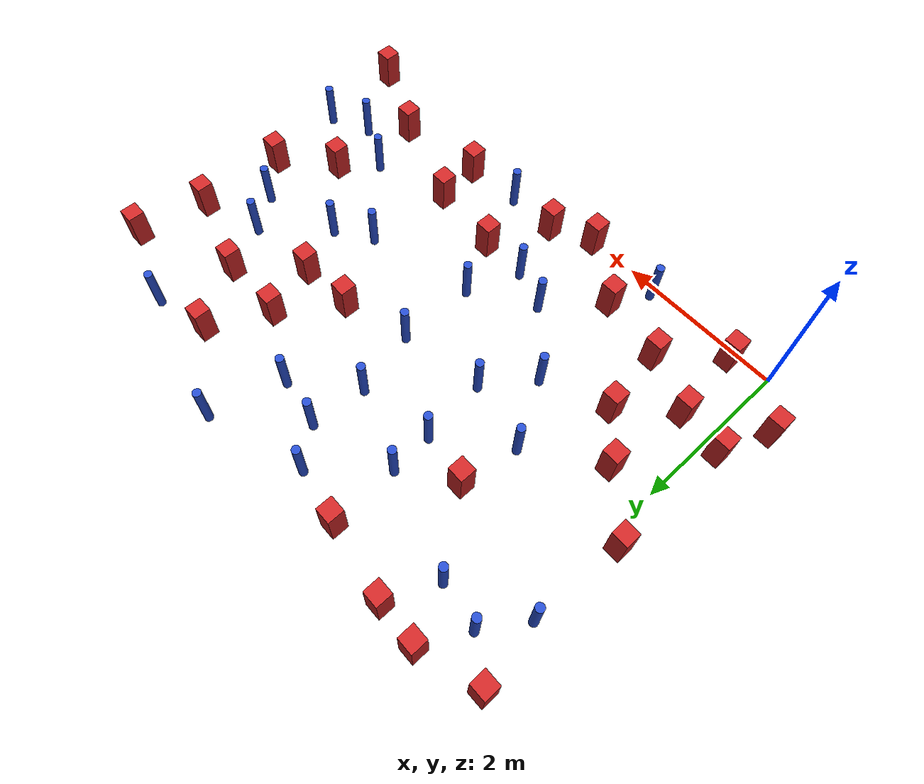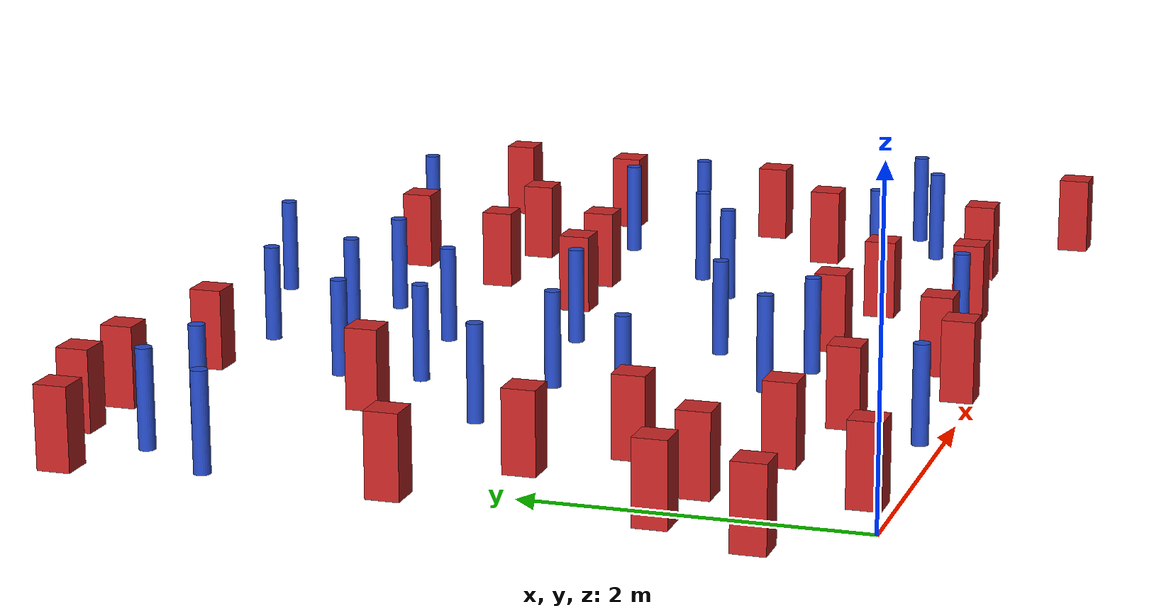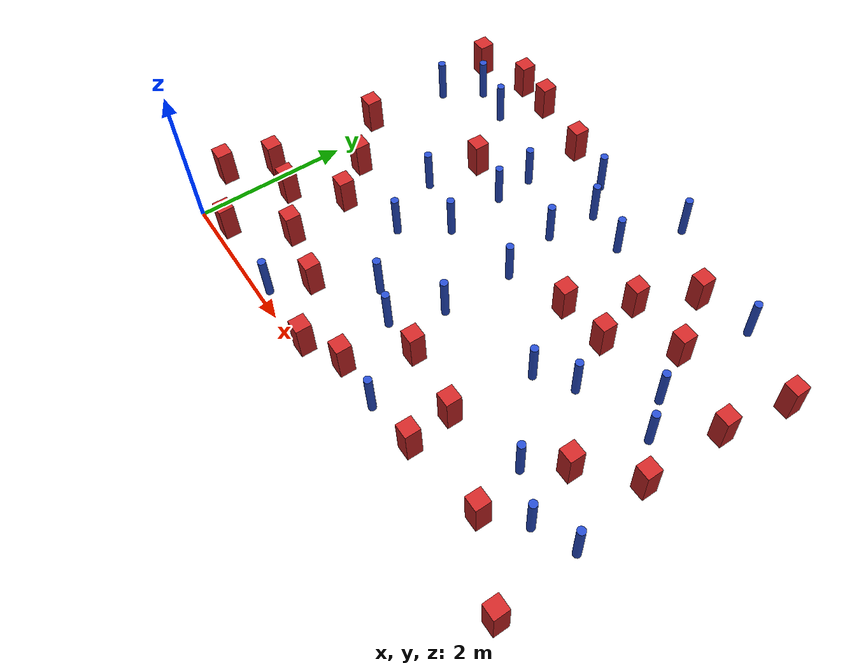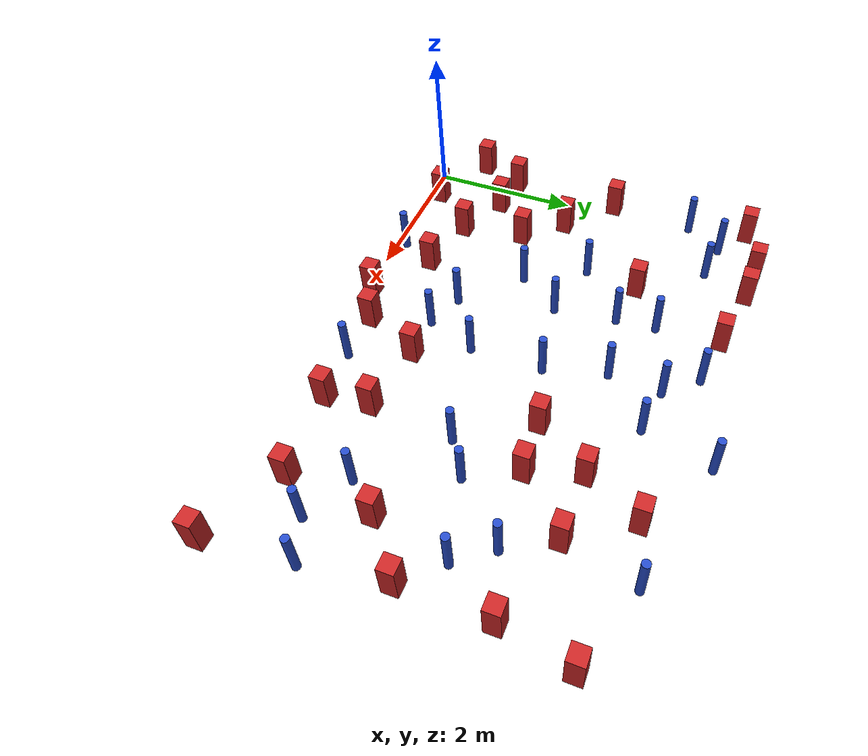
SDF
<sdf version="1.6">
 <model name="dense_71">
  <model name="pole_obstacle4">
   <static>true</static>
   <pose>2.38419710728 1.24697682987 -2.66029137441e-07 -5.69430205626e-07 6.84129966567e-07 -8.68349370747e-08</pose>
   <link name="link">
    <pose>0 0 0.3 0 -0 0</pose>
    <inertial>
     <mass>1</mass>
     <inertia><ixx>0.145833</ixx><ixy>0</ixy><ixz>0</ixz><iyy>0.145833</iyy><iyz>0</iyz><izz>0.125</izz></inertia>
    </inertial>
    <collision name="collision">
     <geometry><cylinder><radius>0.05</radius><length>.6</length></cylinder></geometry>
    </collision>
    <visual name="visual">
     <geometry><cylinder><radius>0.05</radius><length>.6</length></cylinder></geometry>
     <material>
      <script><name>Gazebo/Blue</name><uri>file://media/materials/scripts/gazebo.material</uri></script>
     </material>
    </visual>
   </link>
  </model>
  <model name="pole_obstacle6">
   <static>true</static>
   <pose>4.85572318534 2.34125898473 -2.66029137441e-07 -5.69430205643e-07 6.84129966548e-07 -8.68349370881e-08</pose>
   <link name="link">
    <pose>0 0 0.3 0 -0 0</pose>
    <inertial>
     <mass>1</mass>
     <inertia><ixx>0.145833</ixx><ixy>0</ixy><ixz>0</ixz><iyy>0.145833</iyy><iyz>0</iyz><izz>0.125</izz></inertia>
    </inertial>
    <collision name="collision">
     <geometry><cylinder><radius>0.05</radius><length>.6</length></cylinder></geometry>
    </collision>
    <visual name="visual">
     <geometry><cylinder><radius>0.05</radius><length>.6</length></cylinder></geometry>
     <material>
      <script><name>Gazebo/Blue</name><uri>file://media/materials/scripts/gazebo.material</uri></script>
     </material>
    </visual>
   </link>
  </model>
  <model name="pole_obstacle7">
   <static>true</static>
   <pose>1.96230142851 3.81808928893 -2.66029137441e-07 -5.69430205637e-07 6.84129966555e-07 -8.6834937083e-08</pose>
   <link name="link">
    <pose>0 0 0.3 0 -0 0</pose>
    <inertial>
     <mass>1</mass>
     <inertia><ixx>0.145833</ixx><ixy>0</ixy><ixz>0</ixz><iyy>0.145833</iyy><iyz>0</iyz><izz>0.125</izz></inertia>
    </inertial>
    <collision name="collision">
     <geometry><cylinder><radius>0.05</radius><length>.6</length></cylinder></geometry>
    </collision>
    <visual name="visual">
     <geometry><cylinder><radius>0.05</radius><length>.6</length></cylinder></geometry>
     <material>
      <script><name>Gazebo/Blue</name><uri>file://media/materials/scripts/gazebo.material</uri></script>
     </material>
    </visual>
   </link>
  </model>
  <model name="square_post_obstacle15">
   <static>true</static>
   <pose>2.57964126058 0.0965938394475 -7.80171244635e-07 7.17449752808e-06 -5.6639232126e-07 2.2715510512e-05</pose>
   <link name="link">
    <pose>0 0 0.25 0 -0 0</pose>
    <inertial>
     <mass>100</mass>
     <inertia>
      <ixx>0.166667</ixx>
      <ixy>0</ixy>
      <ixz>0</ixz>
      <iyy>0.166667</iyy>
      <iyz>0</iyz>
      <izz>0.166667</izz>
     </inertia>
    </inertial>
    <collision name="collision"><geometry><box><size>.2 .2 .5</size></box></geometry></collision>
    <visual name="visual">
     <geometry><box><size>.2 .2 .5</size></box></geometry>
     <material>
      <script><name>Gazebo/Red</name><uri>file://media/materials/scripts/gazebo.material</uri></script>
     </material>
    </visual>
   </link>
  </model>
  <model name="pole_obstacle21">
   <static>true</static>
   <pose>5.40762393656 4.50465931764 -2.66029137441e-07 -5.69430205655e-07 6.84129966534e-07 -8.68349370984e-08</pose>
   <link name="link">
    <pose>0 0 0.3 0 -0 0</pose>
    <inertial>
     <mass>1</mass>
     <inertia><ixx>0.145833</ixx><ixy>0</ixy><ixz>0</ixz><iyy>0.145833</iyy><iyz>0</iyz><izz>0.125</izz></inertia>
    </inertial>
    <collision name="collision">
     <geometry><cylinder><radius>0.05</radius><length>.6</length></cylinder></geometry>
    </collision>
    <visual name="visual">
     <geometry><cylinder><radius>0.05</radius><length>.6</length></cylinder></geometry>
     <material>
      <script><name>Gazebo/Blue</name><uri>file://media/materials/scripts/gazebo.material</uri></script>
     </material>
    </visual>
   </link>
  </model>
  <model name="pole_obstacle30">
   <static>true</static>
   <pose>1.69637625777 1.9237775565 -2.66029137441e-07 -5.69430205631e-07 6.84129966561e-07 -8.68349370801e-08</pose>
   <link name="link">
    <pose>0 0 0.3 0 -0 0</pose>
    <inertial>
     <mass>1</mass>
     <inertia><ixx>0.145833</ixx><ixy>0</ixy><ixz>0</ixz><iyy>0.145833</iyy><iyz>0</iyz><izz>0.125</izz></inertia>
    </inertial>
    <collision name="collision">
     <geometry><cylinder><radius>0.05</radius><length>.6</length></cylinder></geometry>
    </collision>
    <visual name="visual">
     <geometry><cylinder><radius>0.05</radius><length>.6</length></cylinder></geometry>
     <material>
      <script><name>Gazebo/Blue</name><uri>file://media/materials/scripts/gazebo.material</uri></script>
     </material>
    </visual>
   </link>
  </model>
  <model name="square_post_obstacle22">
   <static>true</static>
   <pose>4.36004274654 3.6157950318 -7.80171244635e-07 7.17449752808e-06 -5.6639232126e-07 2.2715510512e-05</pose>
   <link name="link">
    <pose>0 0 0.25 0 -0 0</pose>
    <inertial>
     <mass>100</mass>
     <inertia>
      <ixx>0.166667</ixx>
      <ixy>0</ixy>
      <ixz>0</ixz>
      <iyy>0.166667</iyy>
      <iyz>0</iyz>
      <izz>0.166667</izz>
     </inertia>
    </inertial>
    <collision name="collision"><geometry><box><size>.2 .2 .5</size></box></geometry></collision>
    <visual name="visual">
     <geometry><box><size>.2 .2 .5</size></box></geometry>
     <material>
      <script><name>Gazebo/Red</name><uri>file://media/materials/scripts/gazebo.material</uri></script>
     </material>
    </visual>
   </link>
  </model>
  <model name="square_post_obstacle28">
   <static>true</static>
   <pose>1.92408122065 4.64367417338 -7.80171244635e-07 7.17449752808e-06 -5.6639232126e-07 2.2715510512e-05</pose>
   <link name="link">
    <pose>0 0 0.25 0 -0 0</pose>
    <inertial>
     <mass>100</mass>
     <inertia>
      <ixx>0.166667</ixx>
      <ixy>0</ixy>
      <ixz>0</ixz>
      <iyy>0.166667</iyy>
      <iyz>0</iyz>
      <izz>0.166667</izz>
     </inertia>
    </inertial>
    <collision name="collision"><geometry><box><size>.2 .2 .5</size></box></geometry></collision>
    <visual name="visual">
     <geometry><box><size>.2 .2 .5</size></box></geometry>
     <material>
      <script><name>Gazebo/Red</name><uri>file://media/materials/scripts/gazebo.material</uri></script>
     </material>
    </visual>
   </link>
  </model>
  <model name="pole_obstacle34">
   <static>true</static>
   <pose>3.10384391882 2.67245468472 -2.66029137441e-07 -5.69430205643e-07 6.84129966548e-07 -8.68349370903e-08</pose>
   <link name="link">
    <pose>0 0 0.3 0 -0 0</pose>
    <inertial>
     <mass>1</mass>
     <inertia><ixx>0.145833</ixx><ixy>0</ixy><ixz>0</ixz><iyy>0.145833</iyy><iyz>0</iyz><izz>0.125</izz></inertia>
    </inertial>
    <collision name="collision">
     <geometry><cylinder><radius>0.05</radius><length>.6</length></cylinder></geometry>
    </collision>
    <visual name="visual">
     <geometry><cylinder><radius>0.05</radius><length>.6</length></cylinder></geometry>
     <material>
      <script><name>Gazebo/Blue</name><uri>file://media/materials/scripts/gazebo.material</uri></script>
     </material>
    </visual>
   </link>
  </model>
  <model name="pole_obstacle43">
   <static>true</static>
   <pose>-0.0823583343224 3.80414017 -2.66029137441e-07 -5.6943020563e-07 6.84129966563e-07 -8.68349370787e-08</pose>
   <link name="link">
    <pose>0 0 0.3 0 -0 0</pose>
    <inertial>
     <mass>1</mass>
     <inertia><ixx>0.145833</ixx><ixy>0</ixy><ixz>0</ixz><iyy>0.145833</iyy><iyz>0</iyz><izz>0.125</izz></inertia>
    </inertial>
    <collision name="collision">
     <geometry><cylinder><radius>0.05</radius><length>.6</length></cylinder></geometry>
    </collision>
    <visual name="visual">
     <geometry><cylinder><radius>0.05</radius><length>.6</length></cylinder></geometry>
     <material>
      <script><name>Gazebo/Blue</name><uri>file://media/materials/scripts/gazebo.material</uri></script>
     </material>
    </visual>
   </link>
  </model>
  <model name="pole_obstacle49">
   <static>true</static>
   <pose>5.29447376615 1.23253659601 -2.66029137441e-07 -5.69430205627e-07 6.84129966567e-07 -8.68349370776e-08</pose>
   <link name="link">
    <pose>0 0 0.3 0 -0 0</pose>
    <inertial>
     <mass>1</mass>
     <inertia><ixx>0.145833</ixx><ixy>0</ixy><ixz>0</ixz><iyy>0.145833</iyy><iyz>0</iyz><izz>0.125</izz></inertia>
    </inertial>
    <collision name="collision">
     <geometry><cylinder><radius>0.05</radius><length>.6</length></cylinder></geometry>
    </collision>
    <visual name="visual">
     <geometry><cylinder><radius>0.05</radius><length>.6</length></cylinder></geometry>
     <material>
      <script><name>Gazebo/Blue</name><uri>file://media/materials/scripts/gazebo.material</uri></script>
     </material>
    </visual>
   </link>
  </model>
  <model name="pole_obstacle53">
   <static>true</static>
   <pose>3.54613413945 4.03960462503 -2.66029137441e-07 -5.69430205635e-07 6.84129966557e-07 -8.68349370832e-08</pose>
   <link name="link">
    <pose>0 0 0.3 0 -0 0</pose>
    <inertial>
     <mass>1</mass>
     <inertia><ixx>0.145833</ixx><ixy>0</ixy><ixz>0</ixz><iyy>0.145833</iyy><iyz>0</iyz><izz>0.125</izz></inertia>
    </inertial>
    <collision name="collision">
     <geometry><cylinder><radius>0.05</radius><length>.6</length></cylinder></geometry>
    </collision>
    <visual name="visual">
     <geometry><cylinder><radius>0.05</radius><length>.6</length></cylinder></geometry>
     <material>
      <script><name>Gazebo/Blue</name><uri>file://media/materials/scripts/gazebo.material</uri></script>
     </material>
    </visual>
   </link>
  </model>
  <model name="square_post_obstacle40">
   <static>true</static>
   <pose>5.19089357855 3.6046396595 -7.80171244635e-07 7.17449752808e-06 -5.6639232126e-07 2.2715510512e-05</pose>
   <link name="link">
    <pose>0 0 0.25 0 -0 0</pose>
    <inertial>
     <mass>100</mass>
     <inertia>
      <ixx>0.166667</ixx>
      <ixy>0</ixy>
      <ixz>0</ixz>
      <iyy>0.166667</iyy>
      <iyz>0</iyz>
      <izz>0.166667</izz>
     </inertia>
    </inertial>
    <collision name="collision"><geometry><box><size>.2 .2 .5</size></box></geometry></collision>
    <visual name="visual">
     <geometry><box><size>.2 .2 .5</size></box></geometry>
     <material>
      <script><name>Gazebo/Red</name><uri>file://media/materials/scripts/gazebo.material</uri></script>
     </material>
    </visual>
   </link>
  </model>
  <model name="square_post_obstacle43">
   <static>true</static>
   <pose>3.426418821 1.08181021489 -7.80171244635e-07 7.17449752808e-06 -5.6639232126e-07 2.2715510512e-05</pose>
   <link name="link">
    <pose>0 0 0.25 0 -0 0</pose>
    <inertial>
     <mass>100</mass>
     <inertia>
      <ixx>0.166667</ixx>
      <ixy>0</ixy>
      <ixz>0</ixz>
      <iyy>0.166667</iyy>
      <iyz>0</iyz>
      <izz>0.166667</izz>
     </inertia>
    </inertial>
    <collision name="collision"><geometry><box><size>.2 .2 .5</size></box></geometry></collision>
    <visual name="visual">
     <geometry><box><size>.2 .2 .5</size></box></geometry>
     <material>
      <script><name>Gazebo/Red</name><uri>file://media/materials/scripts/gazebo.material</uri></script>
     </material>
    </visual>
   </link>
  </model>
  <model name="pole_obstacle57">
   <static>true</static>
   <pose>1.27595280279 2.68957354085 -2.66029137441e-07 -5.69430205634e-07 6.84129966558e-07 -8.68349370806e-08</pose>
   <link name="link">
    <pose>0 0 0.3 0 -0 0</pose>
    <inertial>
     <mass>1</mass>
     <inertia><ixx>0.145833</ixx><ixy>0</ixy><ixz>0</ixz><iyy>0.145833</iyy><iyz>0</iyz><izz>0.125</izz></inertia>
    </inertial>
    <collision name="collision">
     <geometry><cylinder><radius>0.05</radius><length>.6</length></cylinder></geometry>
    </collision>
    <visual name="visual">
     <geometry><cylinder><radius>0.05</radius><length>.6</length></cylinder></geometry>
     <material>
      <script><name>Gazebo/Blue</name><uri>file://media/materials/scripts/gazebo.material</uri></script>
     </material>
    </visual>
   </link>
  </model>
  <model name="square_post_obstacle45">
   <static>true</static>
   <pose>1.01305739748 4.79835674874 -7.80171244635e-07 7.17449752808e-06 -5.6639232126e-07 2.2715510512e-05</pose>
   <link name="link">
    <pose>0 0 0.25 0 -0 0</pose>
    <inertial>
     <mass>100</mass>
     <inertia>
      <ixx>0.166667</ixx>
      <ixy>0</ixy>
      <ixz>0</ixz>
      <iyy>0.166667</iyy>
      <iyz>0</iyz>
      <izz>0.166667</izz>
     </inertia>
    </inertial>
    <collision name="collision"><geometry><box><size>.2 .2 .5</size></box></geometry></collision>
    <visual name="visual">
     <geometry><box><size>.2 .2 .5</size></box></geometry>
     <material>
      <script><name>Gazebo/Red</name><uri>file://media/materials/scripts/gazebo.material</uri></script>
     </material>
    </visual>
   </link>
  </model>
  <model name="square_post_obstacle46">
   <static>true</static>
   <pose>5.49356925223 0.547908798125 -7.80171244635e-07 7.17449752808e-06 -5.6639232126e-07 2.2715510512e-05</pose>
   <link name="link">
    <pose>0 0 0.25 0 -0 0</pose>
    <inertial>
     <mass>100</mass>
     <inertia>
      <ixx>0.166667</ixx>
      <ixy>0</ixy>
      <ixz>0</ixz>
      <iyy>0.166667</iyy>
      <iyz>0</iyz>
      <izz>0.166667</izz>
     </inertia>
    </inertial>
    <collision name="collision"><geometry><box><size>.2 .2 .5</size></box></geometry></collision>
    <visual name="visual">
     <geometry><box><size>.2 .2 .5</size></box></geometry>
     <material>
      <script><name>Gazebo/Red</name><uri>file://media/materials/scripts/gazebo.material</uri></script>
     </material>
    </visual>
   </link>
  </model>
  <model name="square_post_obstacle49">
   <static>true</static>
   <pose>0.37520636482 1.08599796568 -7.80171244635e-07 7.17449752808e-06 -5.6639232126e-07 2.2715510512e-05</pose>
   <link name="link">
    <pose>0 0 0.25 0 -0 0</pose>
    <inertial>
     <mass>100</mass>
     <inertia>
      <ixx>0.166667</ixx>
      <ixy>0</ixy>
      <ixz>0</ixz>
      <iyy>0.166667</iyy>
      <iyz>0</iyz>
      <izz>0.166667</izz>
     </inertia>
    </inertial>
    <collision name="collision"><geometry><box><size>.2 .2 .5</size></box></geometry></collision>
    <visual name="visual">
     <geometry><box><size>.2 .2 .5</size></box></geometry>
     <material>
      <script><name>Gazebo/Red</name><uri>file://media/materials/scripts/gazebo.material</uri></script>
     </material>
    </visual>
   </link>
  </model>
  <model name="pole_obstacle68">
   <static>true</static>
   <pose>5.81796552223 2.61014844014 -2.66029137441e-07 -5.69430205643e-07 6.84129966548e-07 -8.68349370881e-08</pose>
   <link name="link">
    <pose>0 0 0.3 0 -0 0</pose>
    <inertial>
     <mass>1</mass>
     <inertia><ixx>0.145833</ixx><ixy>0</ixy><ixz>0</ixz><iyy>0.145833</iyy><iyz>0</iyz><izz>0.125</izz></inertia>
    </inertial>
    <collision name="collision">
     <geometry><cylinder><radius>0.05</radius><length>.6</length></cylinder></geometry>
    </collision>
    <visual name="visual">
     <geometry><cylinder><radius>0.05</radius><length>.6</length></cylinder></geometry>
     <material>
      <script><name>Gazebo/Blue</name><uri>file://media/materials/scripts/gazebo.material</uri></script>
     </material>
    </visual>
   </link>
  </model>
  <model name="square_post_obstacle53">
   <static>true</static>
   <pose>-0.142103559039 2.67700988703 -7.80171244635e-07 7.17449752808e-06 -5.6639232126e-07 2.2715510512e-05</pose>
   <link name="link">
    <pose>0 0 0.25 0 -0 0</pose>
    <inertial>
     <mass>100</mass>
     <inertia>
      <ixx>0.166667</ixx>
      <ixy>0</ixy>
      <ixz>0</ixz>
      <iyy>0.166667</iyy>
      <iyz>0</iyz>
      <izz>0.166667</izz>
     </inertia>
    </inertial>
    <collision name="collision"><geometry><box><size>.2 .2 .5</size></box></geometry></collision>
    <visual name="visual">
     <geometry><box><size>.2 .2 .5</size></box></geometry>
     <material>
      <script><name>Gazebo/Red</name><uri>file://media/materials/scripts/gazebo.material</uri></script>
     </material>
    </visual>
   </link>
  </model>
  <model name="pole_obstacle83">
   <static>true</static>
   <pose>2.59869494379 4.5320456758 -2.66029137441e-07 -5.69430205635e-07 6.84129966557e-07 -8.68349370832e-08</pose>
   <link name="link">
    <pose>0 0 0.3 0 -0 0</pose>
    <inertial>
     <mass>1</mass>
     <inertia><ixx>0.145833</ixx><ixy>0</ixy><ixz>0</ixz><iyy>0.145833</iyy><iyz>0</iyz><izz>0.125</izz></inertia>
    </inertial>
    <collision name="collision">
     <geometry><cylinder><radius>0.05</radius><length>.6</length></cylinder></geometry>
    </collision>
    <visual name="visual">
     <geometry><cylinder><radius>0.05</radius><length>.6</length></cylinder></geometry>
     <material>
      <script><name>Gazebo/Blue</name><uri>file://media/materials/scripts/gazebo.material</uri></script>
     </material>
    </visual>
   </link>
  </model>
  <model name="pole_obstacle84">
   <static>true</static>
   <pose>6.37673134827 1.16288997143 -2.66029137441e-07 -5.69430205627e-07 6.84129966567e-07 -8.68349370776e-08</pose>
   <link name="link">
    <pose>0 0 0.3 0 -0 0</pose>
    <inertial>
     <mass>1</mass>
     <inertia><ixx>0.145833</ixx><ixy>0</ixy><ixz>0</ixz><iyy>0.145833</iyy><iyz>0</iyz><izz>0.125</izz></inertia>
    </inertial>
    <collision name="collision">
     <geometry><cylinder><radius>0.05</radius><length>.6</length></cylinder></geometry>
    </collision>
    <visual name="visual">
     <geometry><cylinder><radius>0.05</radius><length>.6</length></cylinder></geometry>
     <material>
      <script><name>Gazebo/Blue</name><uri>file://media/materials/scripts/gazebo.material</uri></script>
     </material>
    </visual>
   </link>
  </model>
  <model name="pole_obstacle88">
   <static>true</static>
   <pose>5.88395862595 0.94307463825 -2.66029137441e-07 -5.69430205635e-07 6.84129966557e-07 -8.68349370823e-08</pose>
   <link name="link">
    <pose>0 0 0.3 0 -0 0</pose>
    <inertial>
     <mass>1</mass>
     <inertia><ixx>0.145833</ixx><ixy>0</ixy><ixz>0</ixz><iyy>0.145833</iyy><iyz>0</iyz><izz>0.125</izz></inertia>
    </inertial>
    <collision name="collision">
     <geometry><cylinder><radius>0.05</radius><length>.6</length></cylinder></geometry>
    </collision>
    <visual name="visual">
     <geometry><cylinder><radius>0.05</radius><length>.6</length></cylinder></geometry>
     <material>
      <script><name>Gazebo/Blue</name><uri>file://media/materials/scripts/gazebo.material</uri></script>
     </material>
    </visual>
   </link>
  </model>
  <model name="square_post_obstacle83">
   <static>true</static>
   <pose>0.46695425167 0.162772895564 -7.80171244635e-07 7.17449752808e-06 -5.6639232126e-07 2.2715510512e-05</pose>
   <link name="link">
    <pose>0 0 0.25 0 -0 0</pose>
    <inertial>
     <mass>100</mass>
     <inertia>
      <ixx>0.166667</ixx>
      <ixy>0</ixy>
      <ixz>0</ixz>
      <iyy>0.166667</iyy>
      <iyz>0</iyz>
      <izz>0.166667</izz>
     </inertia>
    </inertial>
    <collision name="collision"><geometry><box><size>.2 .2 .5</size></box></geometry></collision>
    <visual name="visual">
     <geometry><box><size>.2 .2 .5</size></box></geometry>
     <material>
      <script><name>Gazebo/Red</name><uri>file://media/materials/scripts/gazebo.material</uri></script>
     </material>
    </visual>
   </link>
  </model>
  <model name="pole_obstacle97">
   <static>true</static>
   <pose>3.78564591583 4.91891246787 -2.66029137441e-07 -5.69430205635e-07 6.84129966557e-07 -8.68349370832e-08</pose>
   <link name="link">
    <pose>0 0 0.3 0 -0 0</pose>
    <inertial>
     <mass>1</mass>
     <inertia><ixx>0.145833</ixx><ixy>0</ixy><ixz>0</ixz><iyy>0.145833</iyy><iyz>0</iyz><izz>0.125</izz></inertia>
    </inertial>
    <collision name="collision">
     <geometry><cylinder><radius>0.05</radius><length>.6</length></cylinder></geometry>
    </collision>
    <visual name="visual">
     <geometry><cylinder><radius>0.05</radius><length>.6</length></cylinder></geometry>
     <material>
      <script><name>Gazebo/Blue</name><uri>file://media/materials/scripts/gazebo.material</uri></script>
     </material>
    </visual>
   </link>
  </model>
  <model name="square_post_obstacle99">
   <static>true</static>
   <pose>1.04912646387 0.784265294401 -7.80171244635e-07 7.17449752808e-06 -5.6639232126e-07 2.2715510512e-05</pose>
   <link name="link">
    <pose>0 0 0.25 0 -0 0</pose>
    <inertial>
     <mass>100</mass>
     <inertia>
      <ixx>0.166667</ixx>
      <ixy>0</ixy>
      <ixz>0</ixz>
      <iyy>0.166667</iyy>
      <iyz>0</iyz>
      <izz>0.166667</izz>
     </inertia>
    </inertial>
    <collision name="collision"><geometry><box><size>.2 .2 .5</size></box></geometry></collision>
    <visual name="visual">
     <geometry><box><size>.2 .2 .5</size></box></geometry>
     <material>
      <script><name>Gazebo/Red</name><uri>file://media/materials/scripts/gazebo.material</uri></script>
     </material>
    </visual>
   </link>
  </model>
  <model name="square_post_obstacle100">
   <static>true</static>
   <pose>4.40381497937 0.40298393964 -7.80171244635e-07 7.17449752808e-06 -5.6639232126e-07 2.2715510512e-05</pose>
   <link name="link">
    <pose>0 0 0.25 0 -0 0</pose>
    <inertial>
     <mass>100</mass>
     <inertia>
      <ixx>0.166667</ixx>
      <ixy>0</ixy>
      <ixz>0</ixz>
      <iyy>0.166667</iyy>
      <iyz>0</iyz>
      <izz>0.166667</izz>
     </inertia>
    </inertial>
    <collision name="collision"><geometry><box><size>.2 .2 .5</size></box></geometry></collision>
    <visual name="visual">
     <geometry><box><size>.2 .2 .5</size></box></geometry>
     <material>
      <script><name>Gazebo/Red</name><uri>file://media/materials/scripts/gazebo.material</uri></script>
     </material>
    </visual>
   </link>
  </model>
  <model name="square_post_obstacle103">
   <static>true</static>
   <pose>3.08293874781 0.331719060958 -7.80171244635e-07 7.17449752808e-06 -5.6639232126e-07 2.2715510512e-05</pose>
   <link name="link">
    <pose>0 0 0.25 0 -0 0</pose>
    <inertial>
     <mass>100</mass>
     <inertia>
      <ixx>0.166667</ixx>
      <ixy>0</ixy>
      <ixz>0</ixz>
      <iyy>0.166667</iyy>
      <iyz>0</iyz>
      <izz>0.166667</izz>
     </inertia>
    </inertial>
    <collision name="collision"><geometry><box><size>.2 .2 .5</size></box></geometry></collision>
    <visual name="visual">
     <geometry><box><size>.2 .2 .5</size></box></geometry>
     <material>
      <script><name>Gazebo/Red</name><uri>file://media/materials/scripts/gazebo.material</uri></script>
     </material>
    </visual>
   </link>
  </model>
  <model name="square_post_obstacle107">
   <static>true</static>
   <pose>4.55396546435 2.96197729748 -7.80171244635e-07 7.17449752808e-06 -5.6639232126e-07 2.2715510512e-05</pose>
   <link name="link">
    <pose>0 0 0.25 0 -0 0</pose>
    <inertial>
     <mass>100</mass>
     <inertia>
      <ixx>0.166667</ixx>
      <ixy>0</ixy>
      <ixz>0</ixz>
      <iyy>0.166667</iyy>
      <iyz>0</iyz>
      <izz>0.166667</izz>
     </inertia>
    </inertial>
    <collision name="collision"><geometry><box><size>.2 .2 .5</size></box></geometry></collision>
    <visual name="visual">
     <geometry><box><size>.2 .2 .5</size></box></geometry>
     <material>
      <script><name>Gazebo/Red</name><uri>file://media/materials/scripts/gazebo.material</uri></script>
     </material>
    </visual>
   </link>
  </model>
  <model name="square_post_obstacle110">
   <static>true</static>
   <pose>0.482944162668 2.11486347204 -7.80171244635e-07 7.17449752808e-06 -5.6639232126e-07 2.2715510512e-05</pose>
   <link name="link">
    <pose>0 0 0.25 0 -0 0</pose>
    <inertial>
     <mass>100</mass>
     <inertia>
      <ixx>0.166667</ixx>
      <ixy>0</ixy>
      <ixz>0</ixz>
      <iyy>0.166667</iyy>
      <iyz>0</iyz>
      <izz>0.166667</izz>
     </inertia>
    </inertial>
    <collision name="collision"><geometry><box><size>.2 .2 .5</size></box></geometry></collision>
    <visual name="visual">
     <geometry><box><size>.2 .2 .5</size></box></geometry>
     <material>
      <script><name>Gazebo/Red</name><uri>file://media/materials/scripts/gazebo.material</uri></script>
     </material>
    </visual>
   </link>
  </model>
  <model name="square_post_obstacle112">
   <static>true</static>
   <pose>3.88992888738 2.91476549189 -7.80171244635e-07 7.17449752808e-06 -5.6639232126e-07 2.2715510512e-05</pose>
   <link name="link">
    <pose>0 0 0.25 0 -0 0</pose>
    <inertial>
     <mass>100</mass>
     <inertia>
      <ixx>0.166667</ixx>
      <ixy>0</ixy>
      <ixz>0</ixz>
      <iyy>0.166667</iyy>
      <iyz>0</iyz>
      <izz>0.166667</izz>
     </inertia>
    </inertial>
    <collision name="collision"><geometry><box><size>.2 .2 .5</size></box></geometry></collision>
    <visual name="visual">
     <geometry><box><size>.2 .2 .5</size></box></geometry>
     <material>
      <script><name>Gazebo/Red</name><uri>file://media/materials/scripts/gazebo.material</uri></script>
     </material>
    </visual>
   </link>
  </model>
  <model name="pole_obstacle117">
   <static>true</static>
   <pose>2.09569332115 2.49116753536 -2.66029137441e-07 -5.69430205643e-07 6.84129966548e-07 -8.68349370903e-08</pose>
   <link name="link">
    <pose>0 0 0.3 0 -0 0</pose>
    <inertial>
     <mass>1</mass>
     <inertia><ixx>0.145833</ixx><ixy>0</ixy><ixz>0</ixz><iyy>0.145833</iyy><iyz>0</iyz><izz>0.125</izz></inertia>
    </inertial>
    <collision name="collision">
     <geometry><cylinder><radius>0.05</radius><length>.6</length></cylinder></geometry>
    </collision>
    <visual name="visual">
     <geometry><cylinder><radius>0.05</radius><length>.6</length></cylinder></geometry>
     <material>
      <script><name>Gazebo/Blue</name><uri>file://media/materials/scripts/gazebo.material</uri></script>
     </material>
    </visual>
   </link>
  </model>
  <model name="square_post_obstacle119">
   <static>true</static>
   <pose>4.33545442418 0.972664450554 -7.80171244635e-07 7.17449752808e-06 -5.6639232126e-07 2.2715510512e-05</pose>
   <link name="link">
    <pose>0 0 0.25 0 -0 0</pose>
    <inertial>
     <mass>100</mass>
     <inertia>
      <ixx>0.166667</ixx>
      <ixy>0</ixy>
      <ixz>0</ixz>
      <iyy>0.166667</iyy>
      <iyz>0</iyz>
      <izz>0.166667</izz>
     </inertia>
    </inertial>
    <collision name="collision"><geometry><box><size>.2 .2 .5</size></box></geometry></collision>
    <visual name="visual">
     <geometry><box><size>.2 .2 .5</size></box></geometry>
     <material>
      <script><name>Gazebo/Red</name><uri>file://media/materials/scripts/gazebo.material</uri></script>
     </material>
    </visual>
   </link>
  </model>
  <model name="pole_obstacle122">
   <static>true</static>
   <pose>2.89895975173 3.45675731305 -2.66029137441e-07 -5.69430205643e-07 6.84129966548e-07 -8.68349370903e-08</pose>
   <link name="link">
    <pose>0 0 0.3 0 -0 0</pose>
    <inertial>
     <mass>1</mass>
     <inertia><ixx>0.145833</ixx><ixy>0</ixy><ixz>0</ixz><iyy>0.145833</iyy><iyz>0</iyz><izz>0.125</izz></inertia>
    </inertial>
    <collision name="collision">
     <geometry><cylinder><radius>0.05</radius><length>.6</length></cylinder></geometry>
    </collision>
    <visual name="visual">
     <geometry><cylinder><radius>0.05</radius><length>.6</length></cylinder></geometry>
     <material>
      <script><name>Gazebo/Blue</name><uri>file://media/materials/scripts/gazebo.material</uri></script>
     </material>
    </visual>
   </link>
  </model>
  <model name="square_post_obstacle131">
   <static>true</static>
   <pose>6.47801463315 0.0716659699364 -7.80171244635e-07 7.17449752808e-06 -5.6639232126e-07 2.2715510512e-05</pose>
   <link name="link">
    <pose>0 0 0.25 0 -0 0</pose>
    <inertial>
     <mass>100</mass>
     <inertia>
      <ixx>0.166667</ixx>
      <ixy>0</ixy>
      <ixz>0</ixz>
      <iyy>0.166667</iyy>
      <iyz>0</iyz>
      <izz>0.166667</izz>
     </inertia>
    </inertial>
    <collision name="collision"><geometry><box><size>.2 .2 .5</size></box></geometry></collision>
    <visual name="visual">
     <geometry><box><size>.2 .2 .5</size></box></geometry>
     <material>
      <script><name>Gazebo/Red</name><uri>file://media/materials/scripts/gazebo.material</uri></script>
     </material>
    </visual>
   </link>
  </model>
  <model name="square_post_obstacle134">
   <static>true</static>
   <pose>6.23178919463 3.28618995488 -7.80171244635e-07 7.17449752808e-06 -5.6639232126e-07 2.2715510512e-05</pose>
   <link name="link">
    <pose>0 0 0.25 0 -0 0</pose>
    <inertial>
     <mass>100</mass>
     <inertia>
      <ixx>0.166667</ixx>
      <ixy>0</ixy>
      <ixz>0</ixz>
      <iyy>0.166667</iyy>
      <iyz>0</iyz>
      <izz>0.166667</izz>
     </inertia>
    </inertial>
    <collision name="collision"><geometry><box><size>.2 .2 .5</size></box></geometry></collision>
    <visual name="visual">
     <geometry><box><size>.2 .2 .5</size></box></geometry>
     <material>
      <script><name>Gazebo/Red</name><uri>file://media/materials/scripts/gazebo.material</uri></script>
     </material>
    </visual>
   </link>
  </model>
  <model name="square_post_obstacle139">
   <static>true</static>
   <pose>6.39448574078 4.15082508585 -7.80171244635e-07 7.17449752808e-06 -5.6639232126e-07 2.2715510512e-05</pose>
   <link name="link">
    <pose>0 0 0.25 0 -0 0</pose>
    <inertial>
     <mass>100</mass>
     <inertia>
      <ixx>0.166667</ixx>
      <ixy>0</ixy>
      <ixz>0</ixz>
      <iyy>0.166667</iyy>
      <iyz>0</iyz>
      <izz>0.166667</izz>
     </inertia>
    </inertial>
    <collision name="collision"><geometry><box><size>.2 .2 .5</size></box></geometry></collision>
    <visual name="visual">
     <geometry><box><size>.2 .2 .5</size></box></geometry>
     <material>
      <script><name>Gazebo/Red</name><uri>file://media/materials/scripts/gazebo.material</uri></script>
     </material>
    </visual>
   </link>
  </model>
  <model name="pole_obstacle146">
   <static>true</static>
   <pose>2.94785090593 4.13257397243 -2.66029137441e-07 -5.69430205635e-07 6.84129966557e-07 -8.68349370832e-08</pose>
   <link name="link">
    <pose>0 0 0.3 0 -0 0</pose>
    <inertial>
     <mass>1</mass>
     <inertia><ixx>0.145833</ixx><ixy>0</ixy><ixz>0</ixz><iyy>0.145833</iyy><iyz>0</iyz><izz>0.125</izz></inertia>
    </inertial>
    <collision name="collision">
     <geometry><cylinder><radius>0.05</radius><length>.6</length></cylinder></geometry>
    </collision>
    <visual name="visual">
     <geometry><cylinder><radius>0.05</radius><length>.6</length></cylinder></geometry>
     <material>
      <script><name>Gazebo/Blue</name><uri>file://media/materials/scripts/gazebo.material</uri></script>
     </material>
    </visual>
   </link>
  </model>
  <model name="pole_obstacle151">
   <static>true</static>
   <pose>2.86085505439 1.07407964328 -2.66029137441e-07 -5.69430205626e-07 6.84129966567e-07 -8.68349370747e-08</pose>
   <link name="link">
    <pose>0 0 0.3 0 -0 0</pose>
    <inertial>
     <mass>1</mass>
     <inertia><ixx>0.145833</ixx><ixy>0</ixy><ixz>0</ixz><iyy>0.145833</iyy><iyz>0</iyz><izz>0.125</izz></inertia>
    </inertial>
    <collision name="collision">
     <geometry><cylinder><radius>0.05</radius><length>.6</length></cylinder></geometry>
    </collision>
    <visual name="visual">
     <geometry><cylinder><radius>0.05</radius><length>.6</length></cylinder></geometry>
     <material>
      <script><name>Gazebo/Blue</name><uri>file://media/materials/scripts/gazebo.material</uri></script>
     </material>
    </visual>
   </link>
  </model>
  <model name="pole_obstacle152">
   <static>true</static>
   <pose>3.10279254938 1.72539105617 -2.66029137441e-07 -5.69430205626e-07 6.84129966567e-07 -8.68349370747e-08</pose>
   <link name="link">
    <pose>0 0 0.3 0 -0 0</pose>
    <inertial>
     <mass>1</mass>
     <inertia><ixx>0.145833</ixx><ixy>0</ixy><ixz>0</ixz><iyy>0.145833</iyy><iyz>0</iyz><izz>0.125</izz></inertia>
    </inertial>
    <collision name="collision">
     <geometry><cylinder><radius>0.05</radius><length>.6</length></cylinder></geometry>
    </collision>
    <visual name="visual">
     <geometry><cylinder><radius>0.05</radius><length>.6</length></cylinder></geometry>
     <material>
      <script><name>Gazebo/Blue</name><uri>file://media/materials/scripts/gazebo.material</uri></script>
     </material>
    </visual>
   </link>
  </model>
  <model name="square_post_obstacle147">
   <static>true</static>
   <pose>-0.166295842546 1.16433442503 -7.80171244635e-07 7.17449752808e-06 -5.6639232126e-07 2.2715510512e-05</pose>
   <link name="link">
    <pose>0 0 0.25 0 -0 0</pose>
    <inertial>
     <mass>100</mass>
     <inertia>
      <ixx>0.166667</ixx>
      <ixy>0</ixy>
      <ixz>0</ixz>
      <iyy>0.166667</iyy>
      <iyz>0</iyz>
      <izz>0.166667</izz>
     </inertia>
    </inertial>
    <collision name="collision"><geometry><box><size>.2 .2 .5</size></box></geometry></collision>
    <visual name="visual">
     <geometry><box><size>.2 .2 .5</size></box></geometry>
     <material>
      <script><name>Gazebo/Red</name><uri>file://media/materials/scripts/gazebo.material</uri></script>
     </material>
    </visual>
   </link>
  </model>
  <model name="square_post_obstacle150">
   <static>true</static>
   <pose>-0.401342020013 0.565022232125 -7.80171244635e-07 7.17449752808e-06 -5.6639232126e-07 2.2715510512e-05</pose>
   <link name="link">
    <pose>0 0 0.25 0 -0 0</pose>
    <inertial>
     <mass>100</mass>
     <inertia>
      <ixx>0.166667</ixx>
      <ixy>0</ixy>
      <ixz>0</ixz>
      <iyy>0.166667</iyy>
      <iyz>0</iyz>
      <izz>0.166667</izz>
     </inertia>
    </inertial>
    <collision name="collision"><geometry><box><size>.2 .2 .5</size></box></geometry></collision>
    <visual name="visual">
     <geometry><box><size>.2 .2 .5</size></box></geometry>
     <material>
      <script><name>Gazebo/Red</name><uri>file://media/materials/scripts/gazebo.material</uri></script>
     </material>
    </visual>
   </link>
  </model>
  <model name="pole_obstacle165">
   <static>true</static>
   <pose>0.233436097265 4.28815782311 -2.66029137441e-07 -5.69430205628e-07 6.84129966565e-07 -8.68349370765e-08</pose>
   <link name="link">
    <pose>0 0 0.3 0 -0 0</pose>
    <inertial>
     <mass>1</mass>
     <inertia><ixx>0.145833</ixx><ixy>0</ixy><ixz>0</ixz><iyy>0.145833</iyy><iyz>0</iyz><izz>0.125</izz></inertia>
    </inertial>
    <collision name="collision">
     <geometry><cylinder><radius>0.05</radius><length>.6</length></cylinder></geometry>
    </collision>
    <visual name="visual">
     <geometry><cylinder><radius>0.05</radius><length>.6</length></cylinder></geometry>
     <material>
      <script><name>Gazebo/Blue</name><uri>file://media/materials/scripts/gazebo.material</uri></script>
     </material>
    </visual>
   </link>
  </model>
  <model name="square_post_obstacle169">
   <static>true</static>
   <pose>1.38005438468 3.40444852442 -7.80171244635e-07 7.17449752808e-06 -5.6639232126e-07 2.2715510512e-05</pose>
   <link name="link">
    <pose>0 0 0.25 0 -0 0</pose>
    <inertial>
     <mass>100</mass>
     <inertia>
      <ixx>0.166667</ixx>
      <ixy>0</ixy>
      <ixz>0</ixz>
      <iyy>0.166667</iyy>
      <iyz>0</iyz>
      <izz>0.166667</izz>
     </inertia>
    </inertial>
    <collision name="collision"><geometry><box><size>.2 .2 .5</size></box></geometry></collision>
    <visual name="visual">
     <geometry><box><size>.2 .2 .5</size></box></geometry>
     <material>
      <script><name>Gazebo/Red</name><uri>file://media/materials/scripts/gazebo.material</uri></script>
     </material>
    </visual>
   </link>
  </model>
  <model name="pole_obstacle170">
   <static>true</static>
   <pose>0.765131276808 4.20770242626 -2.66029137441e-07 -5.69430205631e-07 6.84129966561e-07 -8.68349370784e-08</pose>
   <link name="link">
    <pose>0 0 0.3 0 -0 0</pose>
    <inertial>
     <mass>1</mass>
     <inertia><ixx>0.145833</ixx><ixy>0</ixy><ixz>0</ixz><iyy>0.145833</iyy><iyz>0</iyz><izz>0.125</izz></inertia>
    </inertial>
    <collision name="collision">
     <geometry><cylinder><radius>0.05</radius><length>.6</length></cylinder></geometry>
    </collision>
    <visual name="visual">
     <geometry><cylinder><radius>0.05</radius><length>.6</length></cylinder></geometry>
     <material>
      <script><name>Gazebo/Blue</name><uri>file://media/materials/scripts/gazebo.material</uri></script>
     </material>
    </visual>
   </link>
  </model>
  <model name="square_post_obstacle179">
   <static>true</static>
   <pose>-0.212685796957 4.60070642719 -7.80171244635e-07 7.17449752808e-06 -5.6639232126e-07 2.2715510512e-05</pose>
   <link name="link">
    <pose>0 0 0.25 0 -0 0</pose>
    <inertial>
     <mass>100</mass>
     <inertia>
      <ixx>0.166667</ixx>
      <ixy>0</ixy>
      <ixz>0</ixz>
      <iyy>0.166667</iyy>
      <iyz>0</iyz>
      <izz>0.166667</izz>
     </inertia>
    </inertial>
    <collision name="collision"><geometry><box><size>.2 .2 .5</size></box></geometry></collision>
    <visual name="visual">
     <geometry><box><size>.2 .2 .5</size></box></geometry>
     <material>
      <script><name>Gazebo/Red</name><uri>file://media/materials/scripts/gazebo.material</uri></script>
     </material>
    </visual>
   </link>
  </model>
  <model name="square_post_obstacle180">
   <static>true</static>
   <pose>6.21908975658 2.18838528484 -7.80171244635e-07 7.17449752808e-06 -5.6639232126e-07 2.2715510512e-05</pose>
   <link name="link">
    <pose>0 0 0.25 0 -0 0</pose>
    <inertial>
     <mass>100</mass>
     <inertia>
      <ixx>0.166667</ixx>
      <ixy>0</ixy>
      <ixz>0</ixz>
      <iyy>0.166667</iyy>
      <iyz>0</iyz>
      <izz>0.166667</izz>
     </inertia>
    </inertial>
    <collision name="collision"><geometry><box><size>.2 .2 .5</size></box></geometry></collision>
    <visual name="visual">
     <geometry><box><size>.2 .2 .5</size></box></geometry>
     <material>
      <script><name>Gazebo/Red</name><uri>file://media/materials/scripts/gazebo.material</uri></script>
     </material>
    </visual>
   </link>
  </model>
  <model name="square_post_obstacle192">
   <static>true</static>
   <pose>5.61744662389 1.65668962141 -7.80171244635e-07 7.17449752808e-06 -5.6639232126e-07 2.2715510512e-05</pose>
   <link name="link">
    <pose>0 0 0.25 0 -0 0</pose>
    <inertial>
     <mass>100</mass>
     <inertia>
      <ixx>0.166667</ixx>
      <ixy>0</ixy>
      <ixz>0</ixz>
      <iyy>0.166667</iyy>
      <iyz>0</iyz>
      <izz>0.166667</izz>
     </inertia>
    </inertial>
    <collision name="collision"><geometry><box><size>.2 .2 .5</size></box></geometry></collision>
    <visual name="visual">
     <geometry><box><size>.2 .2 .5</size></box></geometry>
     <material>
      <script><name>Gazebo/Red</name><uri>file://media/materials/scripts/gazebo.material</uri></script>
     </material>
    </visual>
   </link>
  </model>
  <model name="pole_obstacle187">
   <static>true</static>
   <pose>3.71958324996 0.326977264827 -2.66029137441e-07 -5.69430205624e-07 6.8412996657e-07 -8.6834937075e-08</pose>
   <link name="link">
    <pose>0 0 0.3 0 -0 0</pose>
    <inertial>
     <mass>1</mass>
     <inertia><ixx>0.145833</ixx><ixy>0</ixy><ixz>0</ixz><iyy>0.145833</iyy><iyz>0</iyz><izz>0.125</izz></inertia>
    </inertial>
    <collision name="collision">
     <geometry><cylinder><radius>0.05</radius><length>.6</length></cylinder></geometry>
    </collision>
    <visual name="visual">
     <geometry><cylinder><radius>0.05</radius><length>.6</length></cylinder></geometry>
     <material>
      <script><name>Gazebo/Blue</name><uri>file://media/materials/scripts/gazebo.material</uri></script>
     </material>
    </visual>
   </link>
  </model>
  <model name="pole_obstacle188">
   <static>true</static>
   <pose>4.42635592959 2.04812612998 -2.66029137441e-07 -5.69430205632e-07 6.84129966561e-07 -8.68349370791e-08</pose>
   <link name="link">
    <pose>0 0 0.3 0 -0 0</pose>
    <inertial>
     <mass>1</mass>
     <inertia><ixx>0.145833</ixx><ixy>0</ixy><ixz>0</ixz><iyy>0.145833</iyy><iyz>0</iyz><izz>0.125</izz></inertia>
    </inertial>
    <collision name="collision">
     <geometry><cylinder><radius>0.05</radius><length>.6</length></cylinder></geometry>
    </collision>
    <visual name="visual">
     <geometry><cylinder><radius>0.05</radius><length>.6</length></cylinder></geometry>
     <material>
      <script><name>Gazebo/Blue</name><uri>file://media/materials/scripts/gazebo.material</uri></script>
     </material>
    </visual>
   </link>
  </model>
  <model name="square_post_obstacle200">
   <static>true</static>
   <pose>0.924338284329 1.62138440986 -7.80171244635e-07 7.17449752808e-06 -5.6639232126e-07 2.2715510512e-05</pose>
   <link name="link">
    <pose>0 0 0.25 0 -0 0</pose>
    <inertial>
     <mass>100</mass>
     <inertia>
      <ixx>0.166667</ixx>
      <ixy>0</ixy>
      <ixz>0</ixz>
      <iyy>0.166667</iyy>
      <iyz>0</iyz>
      <izz>0.166667</izz>
     </inertia>
    </inertial>
    <collision name="collision"><geometry><box><size>.2 .2 .5</size></box></geometry></collision>
    <visual name="visual">
     <geometry><box><size>.2 .2 .5</size></box></geometry>
     <material>
      <script><name>Gazebo/Red</name><uri>file://media/materials/scripts/gazebo.material</uri></script>
     </material>
    </visual>
   </link>
  </model>
  <model name="pole_obstacle192">
   <static>true</static>
   <pose>2.0004956605 3.30228815203 -2.66029137441e-07 -5.69430205647e-07 6.84129966544e-07 -8.68349370923e-08</pose>
   <link name="link">
    <pose>0 0 0.3 0 -0 0</pose>
    <inertial>
     <mass>1</mass>
     <inertia><ixx>0.145833</ixx><ixy>0</ixy><ixz>0</ixz><iyy>0.145833</iyy><iyz>0</iyz><izz>0.125</izz></inertia>
    </inertial>
    <collision name="collision">
     <geometry><cylinder><radius>0.05</radius><length>.6</length></cylinder></geometry>
    </collision>
    <visual name="visual">
     <geometry><cylinder><radius>0.05</radius><length>.6</length></cylinder></geometry>
     <material>
      <script><name>Gazebo/Blue</name><uri>file://media/materials/scripts/gazebo.material</uri></script>
     </material>
    </visual>
   </link>
  </model>
  <model name="pole_obstacle204">
   <static>true</static>
   <pose>5.50518800168 3.03152204031 -2.66029137441e-07 -5.69430205643e-07 6.84129966548e-07 -8.68349370881e-08</pose>
   <link name="link">
    <pose>0 0 0.3 0 -0 0</pose>
    <inertial>
     <mass>1</mass>
     <inertia><ixx>0.145833</ixx><ixy>0</ixy><ixz>0</ixz><iyy>0.145833</iyy><iyz>0</iyz><izz>0.125</izz></inertia>
    </inertial>
    <collision name="collision">
     <geometry><cylinder><radius>0.05</radius><length>.6</length></cylinder></geometry>
    </collision>
    <visual name="visual">
     <geometry><cylinder><radius>0.05</radius><length>.6</length></cylinder></geometry>
     <material>
      <script><name>Gazebo/Blue</name><uri>file://media/materials/scripts/gazebo.material</uri></script>
     </material>
    </visual>
   </link>
  </model>
  <model name="square_post_obstacle209">
   <static>true</static>
   <pose>1.85395142347 0.613886573397 -7.80171244635e-07 7.17449752808e-06 -5.6639232126e-07 2.2715510512e-05</pose>
   <link name="link">
    <pose>0 0 0.25 0 -0 0</pose>
    <inertial>
     <mass>100</mass>
     <inertia>
      <ixx>0.166667</ixx>
      <ixy>0</ixy>
      <ixz>0</ixz>
      <iyy>0.166667</iyy>
      <iyz>0</iyz>
      <izz>0.166667</izz>
     </inertia>
    </inertial>
    <collision name="collision"><geometry><box><size>.2 .2 .5</size></box></geometry></collision>
    <visual name="visual">
     <geometry><box><size>.2 .2 .5</size></box></geometry>
     <material>
      <script><name>Gazebo/Red</name><uri>file://media/materials/scripts/gazebo.material</uri></script>
     </material>
    </visual>
   </link>
  </model>
  <model name="pole_obstacle220">
   <static>true</static>
   <pose>1.61820785848 0.127920765274 -2.66029137441e-07 -5.69430205629e-07 6.84129966564e-07 -8.68349370763e-08</pose>
   <link name="link">
    <pose>0 0 0.3 0 -0 0</pose>
    <inertial>
     <mass>1</mass>
     <inertia><ixx>0.145833</ixx><ixy>0</ixy><ixz>0</ixz><iyy>0.145833</iyy><iyz>0</iyz><izz>0.125</izz></inertia>
    </inertial>
    <collision name="collision">
     <geometry><cylinder><radius>0.05</radius><length>.6</length></cylinder></geometry>
    </collision>
    <visual name="visual">
     <geometry><cylinder><radius>0.05</radius><length>.6</length></cylinder></geometry>
     <material>
      <script><name>Gazebo/Blue</name><uri>file://media/materials/scripts/gazebo.material</uri></script>
     </material>
    </visual>
   </link>
  </model>
  <model name="square_post_obstacle216">
   <static>true</static>
   <pose>0.494394041012 4.82370997169 -7.80171244635e-07 7.17449752808e-06 -5.6639232126e-07 2.2715510512e-05</pose>
   <link name="link">
    <pose>0 0 0.25 0 -0 0</pose>
    <inertial>
     <mass>100</mass>
     <inertia>
      <ixx>0.166667</ixx>
      <ixy>0</ixy>
      <ixz>0</ixz>
      <iyy>0.166667</iyy>
      <iyz>0</iyz>
      <izz>0.166667</izz>
     </inertia>
    </inertial>
    <collision name="collision"><geometry><box><size>.2 .2 .5</size></box></geometry></collision>
    <visual name="visual">
     <geometry><box><size>.2 .2 .5</size></box></geometry>
     <material>
      <script><name>Gazebo/Red</name><uri>file://media/materials/scripts/gazebo.material</uri></script>
     </material>
    </visual>
   </link>
  </model>
  <model name="square_post_obstacle223">
   <static>true</static>
   <pose>4.71755004101 4.32645997169 -7.80171244635e-07 7.17449752808e-06 -5.6639232126e-07 2.2715510512e-05</pose>
   <link name="link">
    <pose>0 0 0.25 0 -0 0</pose>
    <inertial>
     <mass>100</mass>
     <inertia>
      <ixx>0.166667</ixx>
      <ixy>0</ixy>
      <ixz>0</ixz>
      <iyy>0.166667</iyy>
      <iyz>0</iyz>
      <izz>0.166667</izz>
     </inertia>
    </inertial>
    <collision name="collision"><geometry><box><size>.2 .2 .5</size></box></geometry></collision>
    <visual name="visual">
     <geometry><box><size>.2 .2 .5</size></box></geometry>
     <material>
      <script><name>Gazebo/Red</name><uri>file://media/materials/scripts/gazebo.material</uri></script>
     </material>
    </visual>
   </link>
  </model>
 </model>
</sdf>
